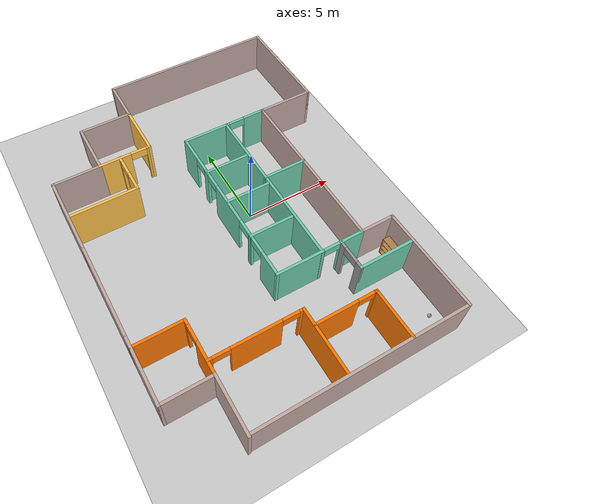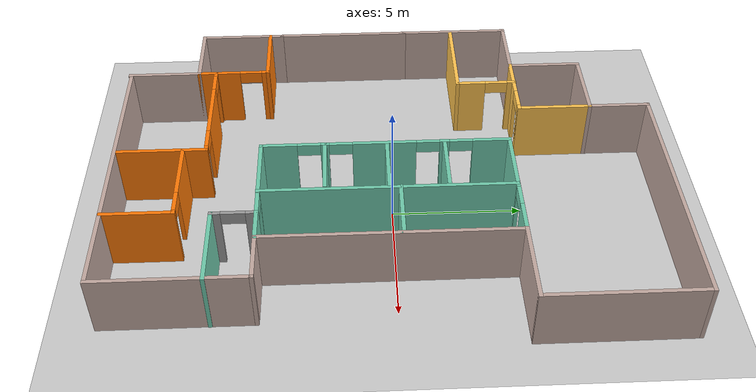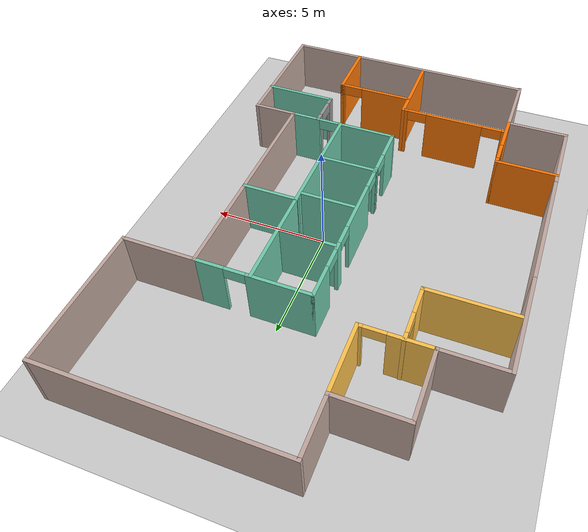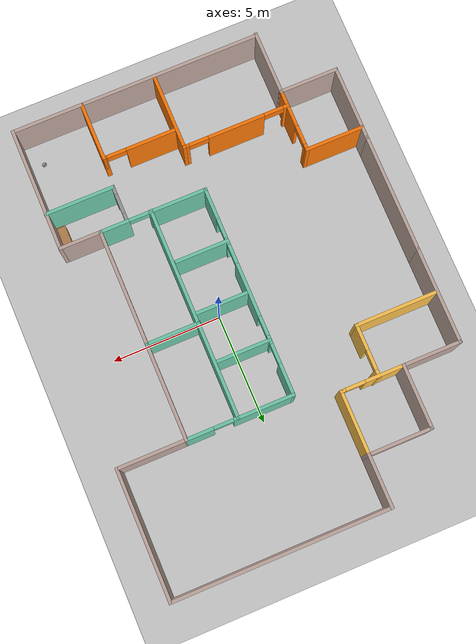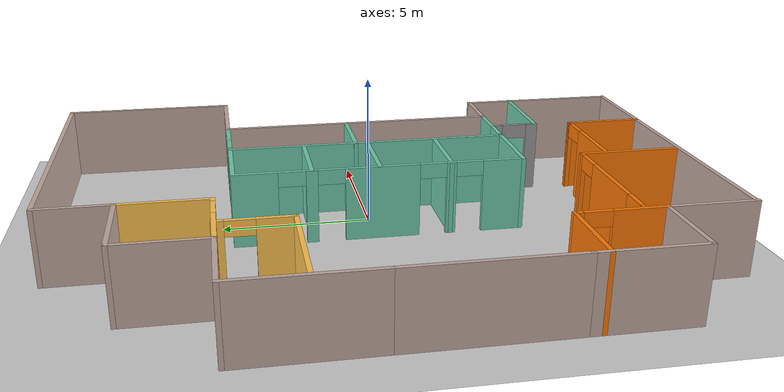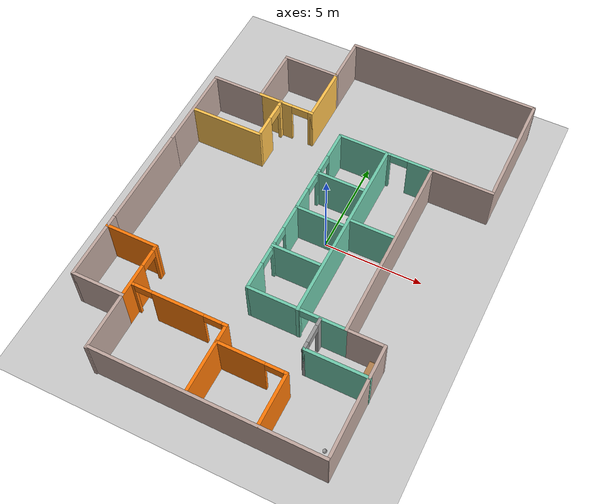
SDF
<sdf version="1.6">
 <world name="default">
  <model name="ground_plane">
   <static>1</static>
   <link name="link">
    <collision name="collision">
     <geometry><plane><normal>0 0 1</normal><size>100 100</size></plane></geometry>
     <surface>
      <contact><collide_bitmask>65535</collide_bitmask></contact>
      <friction><ode><mu>100</mu><mu2>50</mu2></ode></friction>
     </surface>
    </collision>
    <visual name="visual">
     <cast_shadows>0</cast_shadows>
     <geometry><plane><normal>0 0 1</normal><size>100 100</size></plane></geometry>
     <material>
      <script><uri>file://media/materials/scripts/gazebo.material</uri><name>Gazebo/Grey</name></script>
     </material>
    </visual>
   </link>
  </model>
  <model name="my_ball">
   <link name="link_0">
    <inertial>
     <mass>1</mass>
     <inertia><ixx>0.1</ixx><ixy>0</ixy><ixz>0</ixz><iyy>0.1</iyy><iyz>0</iyz><izz>0.1</izz></inertia>
    </inertial>
    <visual name="visual">
     <geometry><sphere><radius>0.1</radius></sphere></geometry>
     <material>
      <lighting>1</lighting>
      <script><uri>file://media/materials/scripts/gazebo.material</uri><name>Gazebo/Grey</name></script>
      <shader type="pixel"><normal_map>__default__</normal_map></shader>
      <ambient>1 1 1 1</ambient>
      <diffuse>1 1 1 1</diffuse>
      <specular>1 1 1 1</specular>
      <emissive>1 1 1 1</emissive>
     </material>
    </visual>
    <collision name="collision">
     <geometry><sphere><radius>0.1</radius></sphere></geometry>
     <surface>
      <friction>
       <ode><mu>1</mu><mu2>1</mu2><fdir1>0 0 0</fdir1><slip1>0</slip1><slip2>0</slip2></ode>
       <torsional>
        <coefficient>1</coefficient>
        <patch_radius>0</patch_radius>
        <surface_radius>0</surface_radius>
        <use_patch_radius>1</use_patch_radius>
        <ode><slip>0</slip></ode>
       </torsional>
      </friction>
      <bounce><restitution_coefficient>0</restitution_coefficient><threshold>1e+06</threshold></bounce>
      <contact>
       <collide_without_contact>0</collide_without_contact>
       <collide_without_contact_bitmask>1</collide_without_contact_bitmask>
       <collide_bitmask>1</collide_bitmask>
       <ode>
        <soft_cfm>0</soft_cfm>
        <soft_erp>0.2</soft_erp>
        <kp>1e+13</kp>
        <kd>1</kd>
        <max_vel>0.01</max_vel>
        <min_depth>0</min_depth>
       </ode>
       <bullet>
        <split_impulse>1</split_impulse>
        <split_impulse_penetration_threshold>-0.01</split_impulse_penetration_threshold>
        <soft_cfm>0</soft_cfm>
        <soft_erp>0.2</soft_erp>
        <kp>1e+13</kp>
        <kd>1</kd>
       </bullet>
      </contact>
     </surface>
    </collision>
   </link>
   <static>0</static>
   <pose>4.58031 -9.50418 0.1 0 -0 0</pose>
  </model>
  <model name="Udacity_L1">
   <pose>-1.15174 -0.093938 0 0 -0 0</pose>
   <link name="Wall_10">
    <collision name="Wall_10_Collision">
     <geometry><box><size>3 0.15 2.5</size></box></geometry>
     <pose>0 0 1.25 0 -0 0</pose>
    </collision>
    <visual name="Wall_10_Visual">
     <pose>0 0 1.25 0 -0 0</pose>
     <geometry><box><size>3 0.15 2.5</size></box></geometry>
     <material>
      <script><uri>file://media/materials/scripts/gazebo.material</uri><name>Gazebo/Grey</name></script>
      <ambient>0.760784 0.662745 0.627451 1</ambient>
     </material>
     <meta><layer>0</layer></meta>
    </visual>
    <pose>-3.625 8.2 0 0 -0 3.14159</pose>
   </link>
   <link name="Wall_11">
    <collision name="Wall_11_Collision">
     <geometry><box><size>3 0.15 2.5</size></box></geometry>
     <pose>0 0 1.25 0 -0 0</pose>
    </collision>
    <visual name="Wall_11_Visual">
     <pose>0 0 1.25 0 -0 0</pose>
     <geometry><box><size>3 0.15 2.5</size></box></geometry>
     <material>
      <script><uri>file://media/materials/scripts/gazebo.material</uri><name>Gazebo/Grey</name></script>
      <ambient>0.760784 0.662745 0.627451 1</ambient>
     </material>
     <meta><layer>0</layer></meta>
    </visual>
    <pose>-5.05 6.775 0 0 0 -1.5708</pose>
   </link>
   <link name="Wall_12">
    <collision name="Wall_12_Collision">
     <geometry><box><size>2.75 0.15 2.5</size></box></geometry>
     <pose>0 0 1.25 0 -0 0</pose>
    </collision>
    <visual name="Wall_12_Visual">
     <pose>0 0 1.25 0 -0 0</pose>
     <geometry><box><size>2.75 0.15 2.5</size></box></geometry>
     <material>
      <script><uri>file://media/materials/scripts/gazebo.material</uri><name>Gazebo/Grey</name></script>
      <ambient>0.760784 0.662745 0.627451 1</ambient>
     </material>
     <meta><layer>0</layer></meta>
    </visual>
    <pose>-6.35 5.35 0 0 -0 3.14159</pose>
   </link>
   <link name="Wall_13">
    <collision name="Wall_13_Collision">
     <geometry><box><size>4.5 0.15 2.5</size></box></geometry>
     <pose>0 0 1.25 0 -0 0</pose>
    </collision>
    <visual name="Wall_13_Visual">
     <pose>0 0 1.25 0 -0 0</pose>
     <geometry><box><size>4.5 0.15 2.5</size></box></geometry>
     <material>
      <script><uri>file://media/materials/scripts/gazebo.material</uri><name>Gazebo/Grey</name></script>
      <ambient>0.760784 0.662745 0.627451 1</ambient>
     </material>
     <meta><layer>0</layer></meta>
    </visual>
    <pose>-7.65 3.175 0 0 0 -1.5708</pose>
   </link>
   <link name="Wall_14">
    <collision name="Wall_14_Collision">
     <geometry><box><size>5.5 0.15 2.5</size></box></geometry>
     <pose>0 0 1.25 0 -0 0</pose>
    </collision>
    <visual name="Wall_14_Visual">
     <pose>0 0 1.25 0 -0 0</pose>
     <geometry><box><size>5.5 0.15 2.5</size></box></geometry>
     <material>
      <script><uri>file://media/materials/scripts/gazebo.material</uri><name>Gazebo/Grey</name></script>
      <ambient>0.760784 0.662745 0.627451 1</ambient>
     </material>
     <meta><layer>0</layer></meta>
    </visual>
    <pose>-7.65 -1.675 0 0 0 -1.5708</pose>
   </link>
   <link name="Wall_15">
    <collision name="Wall_15_Collision">
     <geometry><box><size>3.5 0.15 2.5</size></box></geometry>
     <pose>0 0 1.25 0 -0 0</pose>
    </collision>
    <visual name="Wall_15_Visual">
     <pose>0 0 1.25 0 -0 0</pose>
     <geometry><box><size>3.5 0.15 2.5</size></box></geometry>
     <material>
      <script><uri>file://media/materials/scripts/gazebo.material</uri><name>Gazebo/Grey</name></script>
      <ambient>0.760784 0.662745 0.627451 1</ambient>
     </material>
     <meta><layer>0</layer></meta>
    </visual>
    <pose>-7.65 -6.025 0 0 0 -1.5708</pose>
   </link>
   <link name="Wall_16">
    <collision name="Wall_16_Collision">
     <geometry><box><size>2.75 0.15 2.5</size></box></geometry>
     <pose>0 0 1.25 0 -0 0</pose>
    </collision>
    <visual name="Wall_16_Visual">
     <pose>0 0 1.25 0 -0 0</pose>
     <geometry><box><size>2.75 0.15 2.5</size></box></geometry>
     <material>
      <script><uri>file://media/materials/scripts/gazebo.material</uri><name>Gazebo/Grey</name></script>
      <ambient>0.760784 0.662745 0.627451 1</ambient>
     </material>
     <meta><layer>0</layer></meta>
    </visual>
    <pose>-6.35 -7.7 0 0 -0 0</pose>
   </link>
   <link name="Wall_23">
    <collision name="Wall_23_Collision">
     <geometry><box><size>11.5 0.15 2.5</size></box></geometry>
     <pose>0 0 1.25 0 -0 0</pose>
    </collision>
    <visual name="Wall_23_Visual">
     <pose>0 0 1.25 0 -0 0</pose>
     <geometry><box><size>11.5 0.15 2.5</size></box></geometry>
     <material>
      <script><uri>file://media/materials/scripts/gazebo.material</uri><name>Gazebo/Grey</name></script>
      <ambient>0.760784 0.662745 0.627451 1</ambient>
     </material>
     <meta><layer>0</layer></meta>
    </visual>
    <pose>0.6984 -10.5 0 0 -0 3.14159</pose>
   </link>
   <link name="Wall_25">
    <collision name="Wall_25_Collision">
     <geometry><box><size>3 0.15 2.5</size></box></geometry>
     <pose>0 0 1.25 0 -0 0</pose>
    </collision>
    <visual name="Wall_25_Visual">
     <pose>0 0 1.25 0 -0 0</pose>
     <geometry><box><size>3 0.15 2.5</size></box></geometry>
     <material>
      <script><uri>file://media/materials/scripts/gazebo.material</uri><name>Gazebo/Grey</name></script>
      <ambient>0.760784 0.662745 0.627451 1</ambient>
     </material>
     <meta><layer>0</layer></meta>
    </visual>
    <pose>-5.05 -9.125 0 0 0 -1.5708</pose>
   </link>
   <link name="Wall_27">
    <pose>-3.625 5.35 0 0 -0 0</pose>
    <visual name="Wall_27_Visual_0">
     <pose>-0.583933 0 1.25 0 -0 0</pose>
     <geometry><box><size>1.83213 0.15 2.5</size></box></geometry>
     <material>
      <script><uri>file://media/materials/scripts/gazebo.material</uri><name>Gazebo/Grey</name></script>
      <ambient>1 0.764706 0.305882 1</ambient>
     </material>
     <meta><layer>0</layer></meta>
    </visual>
    <collision name="Wall_27_Collision_0">
     <geometry><box><size>1.83213 0.15 2.5</size></box></geometry>
     <pose>-0.583933 0 1.25 0 -0 0</pose>
    </collision>
    <visual name="Wall_27_Visual_1">
     <pose>1.36607 0 1.25 0 -0 0</pose>
     <geometry><box><size>0.267866 0.15 2.5</size></box></geometry>
     <material>
      <script><uri>file://media/materials/scripts/gazebo.material</uri><name>Gazebo/Grey</name></script>
      <ambient>1 0.764706 0.305882 1</ambient>
     </material>
     <meta><layer>0</layer></meta>
    </visual>
    <collision name="Wall_27_Collision_1">
     <geometry><box><size>0.267866 0.15 2.5</size></box></geometry>
     <pose>1.36607 0 1.25 0 -0 0</pose>
    </collision>
    <visual name="Wall_27_Visual_2">
     <pose>0.782134 0 2.25 0 -0 0</pose>
     <geometry><box><size>0.9 0.15 0.5</size></box></geometry>
     <material>
      <script><uri>file://media/materials/scripts/gazebo.material</uri><name>Gazebo/Grey</name></script>
      <ambient>1 0.764706 0.305882 1</ambient>
     </material>
     <meta><layer>0</layer></meta>
    </visual>
    <collision name="Wall_27_Collision_2">
     <geometry><box><size>0.9 0.15 0.5</size></box></geometry>
     <pose>0.782134 0 2.25 0 -0 0</pose>
    </collision>
   </link>
   <link name="Wall_28">
    <collision name="Wall_28_Collision">
     <geometry><box><size>3 0.15 2.5</size></box></geometry>
     <pose>0 0 1.25 0 -0 0</pose>
    </collision>
    <visual name="Wall_28_Visual">
     <pose>0 0 1.25 0 -0 0</pose>
     <geometry><box><size>3 0.15 2.5</size></box></geometry>
     <material>
      <script><uri>file://media/materials/scripts/gazebo.material</uri><name>Gazebo/Grey</name></script>
      <ambient>1 0.764706 0.305882 1</ambient>
     </material>
     <meta><layer>0</layer></meta>
    </visual>
    <pose>-2.2 6.775 0 0 -0 1.5708</pose>
   </link>
   <link name="Wall_3">
    <collision name="Wall_3_Collision">
     <geometry><box><size>5.75 0.15 2.5</size></box></geometry>
     <pose>0 0 1.25 0 -0 0</pose>
    </collision>
    <visual name="Wall_3_Visual">
     <pose>0 0 1.25 0 -0 0</pose>
     <geometry><box><size>5.75 0.15 2.5</size></box></geometry>
     <material>
      <script><uri>file://media/materials/scripts/gazebo.material</uri><name>Gazebo/Grey</name></script>
      <ambient>0.760784 0.662745 0.627451 1</ambient>
     </material>
     <meta><layer>0</layer></meta>
    </visual>
    <pose>6.4 -7.7 0 0 -0 1.5708</pose>
   </link>
   <link name="Wall_33">
    <pose>-3.91607 4.20045 0 0 0 -1.5708</pose>
    <visual name="Wall_33_Visual_0">
     <pose>-1.05923 0 1.25 0 -0 0</pose>
     <geometry><box><size>0.381547 0.15 2.5</size></box></geometry>
     <material>
      <script><uri>file://media/materials/scripts/gazebo.material</uri><name>Gazebo/Grey</name></script>
      <ambient>1 0.764706 0.305882 1</ambient>
     </material>
     <meta><layer>0</layer></meta>
    </visual>
    <collision name="Wall_33_Collision_0">
     <geometry><box><size>0.381547 0.15 2.5</size></box></geometry>
     <pose>-1.05923 0 1.25 0 -0 0</pose>
    </collision>
    <visual name="Wall_33_Visual_1">
     <pose>0.640774 0 1.25 0 -0 0</pose>
     <geometry><box><size>1.21845 0.15 2.5</size></box></geometry>
     <material>
      <script><uri>file://media/materials/scripts/gazebo.material</uri><name>Gazebo/Grey</name></script>
      <ambient>1 0.764706 0.305882 1</ambient>
     </material>
     <meta><layer>0</layer></meta>
    </visual>
    <collision name="Wall_33_Collision_1">
     <geometry><box><size>1.21845 0.15 2.5</size></box></geometry>
     <pose>0.640774 0 1.25 0 -0 0</pose>
    </collision>
    <visual name="Wall_33_Visual_2">
     <pose>-0.418453 0 2.25 0 -0 0</pose>
     <geometry><box><size>0.9 0.15 0.5</size></box></geometry>
     <material>
      <script><uri>file://media/materials/scripts/gazebo.material</uri><name>Gazebo/Grey</name></script>
      <ambient>1 0.764706 0.305882 1</ambient>
     </material>
     <meta><layer>0</layer></meta>
    </visual>
    <collision name="Wall_33_Collision_2">
     <geometry><box><size>0.9 0.15 0.5</size></box></geometry>
     <pose>-0.418453 0 2.25 0 -0 0</pose>
    </collision>
   </link>
   <link name="Wall_34">
    <collision name="Wall_34_Collision">
     <geometry><box><size>3.75 0.15 2.5</size></box></geometry>
     <pose>0 0 1.25 0 -0 0</pose>
    </collision>
    <visual name="Wall_34_Visual">
     <pose>0 0 1.25 0 -0 0</pose>
     <geometry><box><size>3.75 0.15 2.5</size></box></geometry>
     <material>
      <script><uri>file://media/materials/scripts/gazebo.material</uri><name>Gazebo/Grey</name></script>
      <ambient>1 0.764706 0.305882 1</ambient>
     </material>
     <meta><layer>0</layer></meta>
    </visual>
    <pose>-5.71607 3.02545 0 0 -0 3.14159</pose>
   </link>
   <link name="Wall_36">
    <pose>-5.05 -6.275 0 0 -0 1.5708</pose>
    <visual name="Wall_36_Visual_0">
     <pose>-0.615418 0 1.25 0 -0 0</pose>
     <geometry><box><size>1.76916 0.15 2.5</size></box></geometry>
     <material>
      <script><uri>file://media/materials/scripts/gazebo.material</uri><name>Gazebo/Grey</name></script>
      <ambient>0.996078 0.47451 0.0196078 1</ambient>
     </material>
     <meta><layer>0</layer></meta>
    </visual>
    <collision name="Wall_36_Collision_0">
     <geometry><box><size>1.76916 0.15 2.5</size></box></geometry>
     <pose>-0.615418 0 1.25 0 -0 0</pose>
    </collision>
    <visual name="Wall_36_Visual_1">
     <pose>1.33458 0 1.25 0 -0 0</pose>
     <geometry><box><size>0.330836 0.15 2.5</size></box></geometry>
     <material>
      <script><uri>file://media/materials/scripts/gazebo.material</uri><name>Gazebo/Grey</name></script>
      <ambient>0.996078 0.47451 0.0196078 1</ambient>
     </material>
     <meta><layer>0</layer></meta>
    </visual>
    <collision name="Wall_36_Collision_1">
     <geometry><box><size>0.330836 0.15 2.5</size></box></geometry>
     <pose>1.33458 0 1.25 0 -0 0</pose>
    </collision>
    <visual name="Wall_36_Visual_2">
     <pose>0.719164 0 2.25 0 -0 0</pose>
     <geometry><box><size>0.9 0.15 0.5</size></box></geometry>
     <material>
      <script><uri>file://media/materials/scripts/gazebo.material</uri><name>Gazebo/Grey</name></script>
      <ambient>0.996078 0.47451 0.0196078 1</ambient>
     </material>
     <meta><layer>0</layer></meta>
    </visual>
    <collision name="Wall_36_Collision_2">
     <geometry><box><size>0.9 0.15 0.5</size></box></geometry>
     <pose>0.719164 0 2.25 0 -0 0</pose>
    </collision>
   </link>
   <link name="Wall_37">
    <collision name="Wall_37_Collision">
     <geometry><box><size>2.75 0.15 2.5</size></box></geometry>
     <pose>0 0 1.25 0 -0 0</pose>
    </collision>
    <visual name="Wall_37_Visual">
     <pose>0 0 1.25 0 -0 0</pose>
     <geometry><box><size>2.75 0.15 2.5</size></box></geometry>
     <material>
      <script><uri>file://media/materials/scripts/gazebo.material</uri><name>Gazebo/Grey</name></script>
      <ambient>0.996078 0.47451 0.0196078 1</ambient>
     </material>
     <meta><layer>0</layer></meta>
    </visual>
    <pose>-6.35 -4.85 0 0 -0 3.14159</pose>
   </link>
   <link name="Wall_39">
    <pose>-2.61929 -7.0035 0 0 -0 0</pose>
    <visual name="Wall_39_Visual_0">
     <pose>-2.36162 0 1.25 0 -0 0</pose>
     <geometry><box><size>0.27676 0.15 2.5</size></box></geometry>
     <material>
      <script><uri>file://media/materials/scripts/gazebo.material</uri><name>Gazebo/Grey</name></script>
      <ambient>0.996078 0.47451 0.0196078 1</ambient>
     </material>
     <meta><layer>0</layer></meta>
    </visual>
    <collision name="Wall_39_Collision_0">
     <geometry><box><size>0.27676 0.15 2.5</size></box></geometry>
     <pose>-2.36162 0 1.25 0 -0 0</pose>
    </collision>
    <visual name="Wall_39_Visual_1">
     <pose>-0.007702 0 1.25 0 -0 0</pose>
     <geometry><box><size>2.63108 0.15 2.5</size></box></geometry>
     <material>
      <script><uri>file://media/materials/scripts/gazebo.material</uri><name>Gazebo/Grey</name></script>
      <ambient>0.996078 0.47451 0.0196078 1</ambient>
     </material>
     <meta><layer>0</layer></meta>
    </visual>
    <collision name="Wall_39_Collision_1">
     <geometry><box><size>2.63108 0.15 2.5</size></box></geometry>
     <pose>-0.007702 0 1.25 0 -0 0</pose>
    </collision>
    <visual name="Wall_39_Visual_2">
     <pose>2.35392 0 1.25 0 -0 0</pose>
     <geometry><box><size>0.292165 0.15 2.5</size></box></geometry>
     <material>
      <script><uri>file://media/materials/scripts/gazebo.material</uri><name>Gazebo/Grey</name></script>
      <ambient>0.996078 0.47451 0.0196078 1</ambient>
     </material>
     <meta><layer>0</layer></meta>
    </visual>
    <collision name="Wall_39_Collision_2">
     <geometry><box><size>0.292165 0.15 2.5</size></box></geometry>
     <pose>2.35392 0 1.25 0 -0 0</pose>
    </collision>
    <visual name="Wall_39_Visual_3">
     <pose>-1.77324 0 2.25 0 -0 0</pose>
     <geometry><box><size>0.9 0.15 0.5</size></box></geometry>
     <material>
      <script><uri>file://media/materials/scripts/gazebo.material</uri><name>Gazebo/Grey</name></script>
      <ambient>0.996078 0.47451 0.0196078 1</ambient>
     </material>
     <meta><layer>0</layer></meta>
    </visual>
    <collision name="Wall_39_Collision_3">
     <geometry><box><size>0.9 0.15 0.5</size></box></geometry>
     <pose>-1.77324 0 2.25 0 -0 0</pose>
    </collision>
    <visual name="Wall_39_Visual_4">
     <pose>1.75784 0 2.25 0 -0 0</pose>
     <geometry><box><size>0.9 0.15 0.5</size></box></geometry>
     <material>
      <script><uri>file://media/materials/scripts/gazebo.material</uri><name>Gazebo/Grey</name></script>
      <ambient>0.996078 0.47451 0.0196078 1</ambient>
     </material>
     <meta><layer>0</layer></meta>
    </visual>
    <collision name="Wall_39_Collision_4">
     <geometry><box><size>0.9 0.15 0.5</size></box></geometry>
     <pose>1.75784 0 2.25 0 -0 0</pose>
    </collision>
   </link>
   <link name="Wall_4">
    <collision name="Wall_4_Collision">
     <geometry><box><size>2 0.15 2.5</size></box></geometry>
     <pose>0 0 1.25 0 -0 0</pose>
    </collision>
    <visual name="Wall_4_Visual">
     <pose>0 0 1.25 0 -0 0</pose>
     <geometry><box><size>2 0.15 2.5</size></box></geometry>
     <material>
      <script><uri>file://media/materials/scripts/gazebo.material</uri><name>Gazebo/Grey</name></script>
      <ambient>0.760784 0.662745 0.627451 1</ambient>
     </material>
     <meta><layer>0</layer></meta>
    </visual>
    <pose>5.475 -4.9 0 0 -0 3.14159</pose>
   </link>
   <link name="Wall_40">
    <collision name="Wall_40_Collision">
     <geometry><box><size>3.5 0.15 2.5</size></box></geometry>
     <pose>0 0 1.25 0 -0 0</pose>
    </collision>
    <visual name="Wall_40_Visual">
     <pose>0 0 1.25 0 -0 0</pose>
     <geometry><box><size>3.5 0.15 2.5</size></box></geometry>
     <material>
      <script><uri>file://media/materials/scripts/gazebo.material</uri><name>Gazebo/Grey</name></script>
      <ambient>0.996078 0.47451 0.0196078 1</ambient>
     </material>
     <meta><layer>0</layer></meta>
    </visual>
    <pose>-0.194292 -8.67849 0 0 0 -1.5708</pose>
   </link>
   <link name="Wall_42">
    <pose>1.52514 -7.8813 0 0 -0 0</pose>
    <visual name="Wall_42_Visual_0">
     <pose>-0.554213 0 1.25 0 -0 0</pose>
     <geometry><box><size>2.39157 0.15 2.5</size></box></geometry>
     <material>
      <script><uri>file://media/materials/scripts/gazebo.material</uri><name>Gazebo/Grey</name></script>
      <ambient>0.996078 0.47451 0.0196078 1</ambient>
     </material>
     <meta><layer>0</layer></meta>
    </visual>
    <collision name="Wall_42_Collision_0">
     <geometry><box><size>2.39157 0.15 2.5</size></box></geometry>
     <pose>-0.554213 0 1.25 0 -0 0</pose>
    </collision>
    <visual name="Wall_42_Visual_1">
     <pose>1.64579 0 1.25 0 -0 0</pose>
     <geometry><box><size>0.208426 0.15 2.5</size></box></geometry>
     <material>
      <script><uri>file://media/materials/scripts/gazebo.material</uri><name>Gazebo/Grey</name></script>
      <ambient>0.996078 0.47451 0.0196078 1</ambient>
     </material>
     <meta><layer>0</layer></meta>
    </visual>
    <collision name="Wall_42_Collision_1">
     <geometry><box><size>0.208426 0.15 2.5</size></box></geometry>
     <pose>1.64579 0 1.25 0 -0 0</pose>
    </collision>
    <visual name="Wall_42_Visual_2">
     <pose>1.09157 0 2.25 0 -0 0</pose>
     <geometry><box><size>0.9 0.15 0.5</size></box></geometry>
     <material>
      <script><uri>file://media/materials/scripts/gazebo.material</uri><name>Gazebo/Grey</name></script>
      <ambient>0.996078 0.47451 0.0196078 1</ambient>
     </material>
     <meta><layer>0</layer></meta>
    </visual>
    <collision name="Wall_42_Collision_2">
     <geometry><box><size>0.9 0.15 0.5</size></box></geometry>
     <pose>1.09157 0 2.25 0 -0 0</pose>
    </collision>
   </link>
   <link name="Wall_43">
    <collision name="Wall_43_Collision">
     <geometry><box><size>2.75 0.15 2.5</size></box></geometry>
     <pose>0 0 1.25 0 -0 0</pose>
    </collision>
    <visual name="Wall_43_Visual">
     <pose>0 0 1.25 0 -0 0</pose>
     <geometry><box><size>2.75 0.15 2.5</size></box></geometry>
     <material>
      <script><uri>file://media/materials/scripts/gazebo.material</uri><name>Gazebo/Grey</name></script>
      <ambient>0.996078 0.47451 0.0196078 1</ambient>
     </material>
     <meta><layer>0</layer></meta>
    </visual>
    <pose>3.20015 -9.1813 0 0 0 -1.5708</pose>
   </link>
   <link name="Wall_48">
    <pose>2.125 -4.9 0 0 -0 3.14159</pose>
    <visual name="Wall_48_Visual_0">
     <pose>-1.80048 0 1.25 0 -0 0</pose>
     <geometry><box><size>1.39905 0.15 2.5</size></box></geometry>
     <material>
      <script><uri>file://media/materials/scripts/gazebo.material</uri><name>Gazebo/Grey</name></script>
      <ambient>0.435294 0.796078 0.67451 1</ambient>
     </material>
     <meta><layer>0</layer></meta>
    </visual>
    <collision name="Wall_48_Collision_0">
     <geometry><box><size>1.39905 0.15 2.5</size></box></geometry>
     <pose>-1.80048 0 1.25 0 -0 0</pose>
    </collision>
    <visual name="Wall_48_Visual_1">
     <pose>1.14952 0 1.25 0 -0 0</pose>
     <geometry><box><size>2.70095 0.15 2.5</size></box></geometry>
     <material>
      <script><uri>file://media/materials/scripts/gazebo.material</uri><name>Gazebo/Grey</name></script>
      <ambient>0.435294 0.796078 0.67451 1</ambient>
     </material>
     <meta><layer>0</layer></meta>
    </visual>
    <collision name="Wall_48_Collision_1">
     <geometry><box><size>2.70095 0.15 2.5</size></box></geometry>
     <pose>1.14952 0 1.25 0 -0 0</pose>
    </collision>
    <visual name="Wall_48_Visual_2">
     <pose>-0.65095 0 2.25 0 -0 0</pose>
     <geometry><box><size>0.9 0.15 0.5</size></box></geometry>
     <material>
      <script><uri>file://media/materials/scripts/gazebo.material</uri><name>Gazebo/Grey</name></script>
      <ambient>0.435294 0.796078 0.67451 1</ambient>
     </material>
     <meta><layer>0</layer></meta>
    </visual>
    <collision name="Wall_48_Collision_2">
     <geometry><box><size>0.9 0.15 0.5</size></box></geometry>
     <pose>-0.65095 0 2.25 0 -0 0</pose>
    </collision>
   </link>
   <link name="Wall_49">
    <pose>-0.3 -0.1 0 0 -0 1.5708</pose>
    <visual name="Wall_49_Visual_0">
     <pose>-4.1449 0 1.25 0 -0 0</pose>
     <geometry><box><size>1.46019 0.15 2.5</size></box></geometry>
     <material>
      <script><uri>file://media/materials/scripts/gazebo.material</uri><name>Gazebo/Grey</name></script>
      <ambient>0.435294 0.796078 0.67451 1</ambient>
     </material>
     <meta><layer>0</layer></meta>
    </visual>
    <collision name="Wall_49_Collision_0">
     <geometry><box><size>1.46019 0.15 2.5</size></box></geometry>
     <pose>-4.1449 0 1.25 0 -0 0</pose>
    </collision>
    <visual name="Wall_49_Visual_1">
     <pose>-2.34984 0 1.25 0 -0 0</pose>
     <geometry><box><size>0.329925 0.15 2.5</size></box></geometry>
     <material>
      <script><uri>file://media/materials/scripts/gazebo.material</uri><name>Gazebo/Grey</name></script>
      <ambient>0.435294 0.796078 0.67451 1</ambient>
     </material>
     <meta><layer>0</layer></meta>
    </visual>
    <collision name="Wall_49_Collision_1">
     <geometry><box><size>0.329925 0.15 2.5</size></box></geometry>
     <pose>-2.34984 0 1.25 0 -0 0</pose>
    </collision>
    <visual name="Wall_49_Visual_2">
     <pose>-0.048692 0 1.25 0 -0 0</pose>
     <geometry><box><size>2.47237 0.15 2.5</size></box></geometry>
     <material>
      <script><uri>file://media/materials/scripts/gazebo.material</uri><name>Gazebo/Grey</name></script>
      <ambient>0.435294 0.796078 0.67451 1</ambient>
     </material>
     <meta><layer>0</layer></meta>
    </visual>
    <collision name="Wall_49_Collision_2">
     <geometry><box><size>2.47237 0.15 2.5</size></box></geometry>
     <pose>-0.048692 0 1.25 0 -0 0</pose>
    </collision>
    <visual name="Wall_49_Visual_3">
     <pose>2.27891 0 1.25 0 -0 0</pose>
     <geometry><box><size>0.382825 0.15 2.5</size></box></geometry>
     <material>
      <script><uri>file://media/materials/scripts/gazebo.material</uri><name>Gazebo/Grey</name></script>
      <ambient>0.435294 0.796078 0.67451 1</ambient>
     </material>
     <meta><layer>0</layer></meta>
    </visual>
    <collision name="Wall_49_Collision_3">
     <geometry><box><size>0.382825 0.15 2.5</size></box></geometry>
     <pose>2.27891 0 1.25 0 -0 0</pose>
    </collision>
    <visual name="Wall_49_Visual_4">
     <pose>4.12266 0 1.25 0 -0 0</pose>
     <geometry><box><size>1.50468 0.15 2.5</size></box></geometry>
     <material>
      <script><uri>file://media/materials/scripts/gazebo.material</uri><name>Gazebo/Grey</name></script>
      <ambient>0.435294 0.796078 0.67451 1</ambient>
     </material>
     <meta><layer>0</layer></meta>
    </visual>
    <collision name="Wall_49_Collision_4">
     <geometry><box><size>1.50468 0.15 2.5</size></box></geometry>
     <pose>4.12266 0 1.25 0 -0 0</pose>
    </collision>
    <visual name="Wall_49_Visual_5">
     <pose>-2.96481 0 2.25 0 -0 0</pose>
     <geometry><box><size>0.9 0.15 0.5</size></box></geometry>
     <material>
      <script><uri>file://media/materials/scripts/gazebo.material</uri><name>Gazebo/Grey</name></script>
      <ambient>0.435294 0.796078 0.67451 1</ambient>
     </material>
     <meta><layer>0</layer></meta>
    </visual>
    <collision name="Wall_49_Collision_5">
     <geometry><box><size>0.9 0.15 0.5</size></box></geometry>
     <pose>-2.96481 0 2.25 0 -0 0</pose>
    </collision>
    <visual name="Wall_49_Visual_6">
     <pose>-1.73488 0 2.25 0 -0 0</pose>
     <geometry><box><size>0.9 0.15 0.5</size></box></geometry>
     <material>
      <script><uri>file://media/materials/scripts/gazebo.material</uri><name>Gazebo/Grey</name></script>
      <ambient>0.435294 0.796078 0.67451 1</ambient>
     </material>
     <meta><layer>0</layer></meta>
    </visual>
    <collision name="Wall_49_Collision_6">
     <geometry><box><size>0.9 0.15 0.5</size></box></geometry>
     <pose>-1.73488 0 2.25 0 -0 0</pose>
    </collision>
    <visual name="Wall_49_Visual_7">
     <pose>1.63749 0 2.25 0 -0 0</pose>
     <geometry><box><size>0.9 0.15 0.5</size></box></geometry>
     <material>
      <script><uri>file://media/materials/scripts/gazebo.material</uri><name>Gazebo/Grey</name></script>
      <ambient>0.435294 0.796078 0.67451 1</ambient>
     </material>
     <meta><layer>0</layer></meta>
    </visual>
    <collision name="Wall_49_Collision_7">
     <geometry><box><size>0.9 0.15 0.5</size></box></geometry>
     <pose>1.63749 0 2.25 0 -0 0</pose>
    </collision>
    <visual name="Wall_49_Visual_8">
     <pose>2.92032 0 2.25 0 -0 0</pose>
     <geometry><box><size>0.9 0.15 0.5</size></box></geometry>
     <material>
      <script><uri>file://media/materials/scripts/gazebo.material</uri><name>Gazebo/Grey</name></script>
      <ambient>0.435294 0.796078 0.67451 1</ambient>
     </material>
     <meta><layer>0</layer></meta>
    </visual>
    <collision name="Wall_49_Collision_8">
     <geometry><box><size>0.9 0.15 0.5</size></box></geometry>
     <pose>2.92032 0 2.25 0 -0 0</pose>
    </collision>
   </link>
   <link name="Wall_5">
    <collision name="Wall_5_Collision">
     <geometry><box><size>9.75 0.15 2.5</size></box></geometry>
     <pose>0 0 1.25 0 -0 0</pose>
    </collision>
    <visual name="Wall_5_Visual">
     <pose>0 0 1.25 0 -0 0</pose>
     <geometry><box><size>9.75 0.15 2.5</size></box></geometry>
     <material>
      <script><uri>file://media/materials/scripts/gazebo.material</uri><name>Gazebo/Grey</name></script>
      <ambient>0.760784 0.662745 0.627451 1</ambient>
     </material>
     <meta><layer>0</layer></meta>
    </visual>
    <pose>4.55 -0.1 0 0 -0 1.5708</pose>
   </link>
   <link name="Wall_50">
    <pose>2.125 4.7 0 0 -0 0</pose>
    <visual name="Wall_50_Visual_0">
     <pose>-1.10811 0 1.25 0 -0 0</pose>
     <geometry><box><size>2.78378 0.15 2.5</size></box></geometry>
     <material>
      <script><uri>file://media/materials/scripts/gazebo.material</uri><name>Gazebo/Grey</name></script>
      <ambient>0.435294 0.796078 0.67451 1</ambient>
     </material>
     <meta><layer>0</layer></meta>
    </visual>
    <collision name="Wall_50_Collision_0">
     <geometry><box><size>2.78378 0.15 2.5</size></box></geometry>
     <pose>-1.10811 0 1.25 0 -0 0</pose>
    </collision>
    <visual name="Wall_50_Visual_1">
     <pose>1.84189 0 1.25 0 -0 0</pose>
     <geometry><box><size>1.31622 0.15 2.5</size></box></geometry>
     <material>
      <script><uri>file://media/materials/scripts/gazebo.material</uri><name>Gazebo/Grey</name></script>
      <ambient>0.435294 0.796078 0.67451 1</ambient>
     </material>
     <meta><layer>0</layer></meta>
    </visual>
    <collision name="Wall_50_Collision_1">
     <geometry><box><size>1.31622 0.15 2.5</size></box></geometry>
     <pose>1.84189 0 1.25 0 -0 0</pose>
    </collision>
    <visual name="Wall_50_Visual_2">
     <pose>0.733778 0 2.25 0 -0 0</pose>
     <geometry><box><size>0.9 0.15 0.5</size></box></geometry>
     <material>
      <script><uri>file://media/materials/scripts/gazebo.material</uri><name>Gazebo/Grey</name></script>
      <ambient>0.435294 0.796078 0.67451 1</ambient>
     </material>
     <meta><layer>0</layer></meta>
    </visual>
    <collision name="Wall_50_Collision_2">
     <geometry><box><size>0.9 0.15 0.5</size></box></geometry>
     <pose>0.733778 0 2.25 0 -0 0</pose>
    </collision>
   </link>
   <link name="Wall_55">
    <pose>3.31562 -5.73776 0 0 0 -1.5708</pose>
    <visual name="Wall_55_Visual_0">
     <pose>-0.662812 0 1.25 0 -0 0</pose>
     <geometry><box><size>0.424377 0.15 2.5</size></box></geometry>
     <material>
      <script><uri>file://media/materials/scripts/gazebo.material</uri><name>Gazebo/Grey</name></script>
      <ambient>1 1 1 1</ambient>
     </material>
     <meta><layer>0</layer></meta>
    </visual>
    <collision name="Wall_55_Collision_0">
     <geometry><box><size>0.424377 0.15 2.5</size></box></geometry>
     <pose>-0.662812 0 1.25 0 -0 0</pose>
    </collision>
    <visual name="Wall_55_Visual_1">
     <pose>0.662188 0 1.25 0 -0 0</pose>
     <geometry><box><size>0.425623 0.15 2.5</size></box></geometry>
     <material>
      <script><uri>file://media/materials/scripts/gazebo.material</uri><name>Gazebo/Grey</name></script>
      <ambient>1 1 1 1</ambient>
     </material>
     <meta><layer>0</layer></meta>
    </visual>
    <collision name="Wall_55_Collision_1">
     <geometry><box><size>0.425623 0.15 2.5</size></box></geometry>
     <pose>0.662188 0 1.25 0 -0 0</pose>
    </collision>
    <visual name="Wall_55_Visual_2">
     <pose>-0.000623 0 2.25 0 -0 0</pose>
     <geometry><box><size>0.9 0.15 0.5</size></box></geometry>
     <material>
      <script><uri>file://media/materials/scripts/gazebo.material</uri><name>Gazebo/Grey</name></script>
      <ambient>1 1 1 1</ambient>
     </material>
     <meta><layer>0</layer></meta>
    </visual>
    <collision name="Wall_55_Collision_2">
     <geometry><box><size>0.9 0.15 0.5</size></box></geometry>
     <pose>-0.000623 0 2.25 0 -0 0</pose>
    </collision>
   </link>
   <link name="Wall_56">
    <collision name="Wall_56_Collision">
     <geometry><box><size>3.25 0.15 2.5</size></box></geometry>
     <pose>0 0 1.25 0 -0 0</pose>
    </collision>
    <visual name="Wall_56_Visual">
     <pose>0 0 1.25 0 -0 0</pose>
     <geometry><box><size>3.25 0.15 2.5</size></box></geometry>
     <material>
      <script><uri>file://media/materials/scripts/gazebo.material</uri><name>Gazebo/Grey</name></script>
      <ambient>0.435294 0.796078 0.67451 1</ambient>
     </material>
     <meta><layer>0</layer></meta>
    </visual>
    <pose>4.86562 -6.53776 0 0 -0 0</pose>
   </link>
   <link name="Wall_58">
    <collision name="Wall_58_Collision">
     <geometry><box><size>9.75 0.15 2.5</size></box></geometry>
     <pose>0 0 1.25 0 -0 0</pose>
    </collision>
    <visual name="Wall_58_Visual">
     <pose>0 0 1.25 0 -0 0</pose>
     <geometry><box><size>9.75 0.15 2.5</size></box></geometry>
     <material>
      <script><uri>file://media/materials/scripts/gazebo.material</uri><name>Gazebo/Grey</name></script>
      <ambient>0.435294 0.796078 0.67451 1</ambient>
     </material>
     <meta><layer>0</layer></meta>
    </visual>
    <pose>2.20765 -0.117521 0 0 -0 1.5708</pose>
   </link>
   <link name="Wall_6">
    <collision name="Wall_6_Collision">
     <geometry><box><size>3.25 0.15 2.5</size></box></geometry>
     <pose>0 0 1.25 0 -0 0</pose>
    </collision>
    <visual name="Wall_6_Visual">
     <pose>0 0 1.25 0 -0 0</pose>
     <geometry><box><size>3.25 0.15 2.5</size></box></geometry>
     <material>
      <script><uri>file://media/materials/scripts/gazebo.material</uri><name>Gazebo/Grey</name></script>
      <ambient>0.760784 0.662745 0.627451 1</ambient>
     </material>
     <meta><layer>0</layer></meta>
    </visual>
    <pose>6.1 4.7 0 0 -0 0</pose>
   </link>
   <link name="Wall_60">
    <collision name="Wall_60_Collision">
     <geometry><box><size>2.5 0.15 2.5</size></box></geometry>
     <pose>0 0 1.25 0 -0 0</pose>
    </collision>
    <visual name="Wall_60_Visual">
     <pose>0 0 1.25 0 -0 0</pose>
     <geometry><box><size>2.5 0.15 2.5</size></box></geometry>
     <material>
      <script><uri>file://media/materials/scripts/gazebo.material</uri><name>Gazebo/Grey</name></script>
      <ambient>0.435294 0.796078 0.67451 1</ambient>
     </material>
     <meta><layer>0</layer></meta>
    </visual>
    <pose>3.35522 0.356501 0 0 -0 0</pose>
   </link>
   <link name="Wall_62">
    <collision name="Wall_62_Collision">
     <geometry><box><size>2.5 0.15 2.5</size></box></geometry>
     <pose>0 0 1.25 0 -0 0</pose>
    </collision>
    <visual name="Wall_62_Visual">
     <pose>0 0 1.25 0 -0 0</pose>
     <geometry><box><size>2.5 0.15 2.5</size></box></geometry>
     <material>
      <script><uri>file://media/materials/scripts/gazebo.material</uri><name>Gazebo/Grey</name></script>
      <ambient>0.435294 0.796078 0.67451 1</ambient>
     </material>
     <meta><layer>0</layer></meta>
    </visual>
    <pose>0.868807 -2.44775 0 0 -0 0</pose>
   </link>
   <link name="Wall_64">
    <collision name="Wall_64_Collision">
     <geometry><box><size>2.5 0.15 2.5</size></box></geometry>
     <pose>0 0 1.25 0 -0 0</pose>
    </collision>
    <visual name="Wall_64_Visual">
     <pose>0 0 1.25 0 -0 0</pose>
     <geometry><box><size>2.5 0.15 2.5</size></box></geometry>
     <material>
      <script><uri>file://media/materials/scripts/gazebo.material</uri><name>Gazebo/Grey</name></script>
      <ambient>0.435294 0.796078 0.67451 1</ambient>
     </material>
     <meta><layer>0</layer></meta>
    </visual>
    <pose>0.902752 -0.053917 0 0 -0 0</pose>
   </link>
   <link name="Wall_66">
    <collision name="Wall_66_Collision">
     <geometry><box><size>2.5 0.15 2.5</size></box></geometry>
     <pose>0 0 1.25 0 -0 0</pose>
    </collision>
    <visual name="Wall_66_Visual">
     <pose>0 0 1.25 0 -0 0</pose>
     <geometry><box><size>2.5 0.15 2.5</size></box></geometry>
     <material>
      <script><uri>file://media/materials/scripts/gazebo.material</uri><name>Gazebo/Grey</name></script>
      <ambient>0.435294 0.796078 0.67451 1</ambient>
     </material>
     <meta><layer>0</layer></meta>
    </visual>
    <pose>0.886218 2.17879 0 0 -0 0</pose>
   </link>
   <link name="Wall_7">
    <collision name="Wall_7_Collision">
     <geometry><box><size>6 0.15 2.5</size></box></geometry>
     <pose>0 0 1.25 0 -0 0</pose>
    </collision>
    <visual name="Wall_7_Visual">
     <pose>0 0 1.25 0 -0 0</pose>
     <geometry><box><size>6 0.15 2.5</size></box></geometry>
     <material>
      <script><uri>file://media/materials/scripts/gazebo.material</uri><name>Gazebo/Grey</name></script>
      <ambient>0.760784 0.662745 0.627451 1</ambient>
     </material>
     <meta><layer>0</layer></meta>
    </visual>
    <pose>7.65 7.625 0 0 -0 1.5708</pose>
   </link>
   <link name="Wall_8">
    <collision name="Wall_8_Collision">
     <geometry><box><size>10 0.15 2.5</size></box></geometry>
     <pose>0 0 1.25 0 -0 0</pose>
    </collision>
    <visual name="Wall_8_Visual">
     <pose>0 0 1.25 0 -0 0</pose>
     <geometry><box><size>10 0.15 2.5</size></box></geometry>
     <material>
      <script><uri>file://media/materials/scripts/gazebo.material</uri><name>Gazebo/Grey</name></script>
      <ambient>0.760784 0.662745 0.627451 1</ambient>
     </material>
     <meta><layer>0</layer></meta>
    </visual>
    <pose>2.725 10.55 0 0 -0 3.14159</pose>
   </link>
   <link name="Wall_9">
    <collision name="Wall_9_Collision">
     <geometry><box><size>2.5 0.15 2.5</size></box></geometry>
     <pose>0 0 1.25 0 -0 0</pose>
    </collision>
    <visual name="Wall_9_Visual">
     <pose>0 0 1.25 0 -0 0</pose>
     <geometry><box><size>2.5 0.15 2.5</size></box></geometry>
     <material>
      <script><uri>file://media/materials/scripts/gazebo.material</uri><name>Gazebo/Grey</name></script>
      <ambient>0.760784 0.662745 0.627451 1</ambient>
     </material>
     <meta><layer>0</layer></meta>
    </visual>
    <pose>-2.2 9.375 0 0 0 -1.5708</pose>
   </link>
   <static>1</static>
  </model>
  <model name="bookshelf">
   <static>1</static>
   <link name="link">
    <inertial><mass>1</mass></inertial>
    <collision name="back">
     <pose>0 0.005 0.6 0 -0 0</pose>
     <geometry><box><size>0.9 0.01 1.2</size></box></geometry>
    </collision>
    <visual name="visual1">
     <pose>0 0.005 0.6 0 -0 0</pose>
     <geometry><box><size>0.9 0.01 1.2</size></box></geometry>
     <material>
      <script><uri>file://media/materials/scripts/gazebo.material</uri><name>Gazebo/Wood</name></script>
     </material>
    </visual>
    <collision name="left_side">
     <pose>0.45 -0.195 0.6 0 -0 0</pose>
     <geometry><box><size>0.02 0.4 1.2</size></box></geometry>
    </collision>
    <visual name="visual2">
     <pose>0.45 -0.195 0.6 0 -0 0</pose>
     <geometry><box><size>0.02 0.4 1.2</size></box></geometry>
     <material>
      <script><uri>file://media/materials/scripts/gazebo.material</uri><name>Gazebo/Wood</name></script>
     </material>
    </visual>
    <collision name="right_side">
     <pose>-0.45 -0.195 0.6 0 -0 0</pose>
     <geometry><box><size>0.02 0.4 1.2</size></box></geometry>
    </collision>
    <visual name="visual3">
     <pose>-0.45 -0.195 0.6 0 -0 0</pose>
     <geometry><box><size>0.02 0.4 1.2</size></box></geometry>
     <material>
      <script><uri>file://media/materials/scripts/gazebo.material</uri><name>Gazebo/Wood</name></script>
     </material>
    </visual>
    <collision name="bottom">
     <pose>0 -0.195 0.03 0 -0 0</pose>
     <geometry><box><size>0.88 0.4 0.06</size></box></geometry>
    </collision>
    <visual name="visual4">
     <pose>0 -0.195 0.03 0 -0 0</pose>
     <geometry><box><size>0.88 0.4 0.06</size></box></geometry>
     <material>
      <script><uri>file://media/materials/scripts/gazebo.material</uri><name>Gazebo/Wood</name></script>
     </material>
    </visual>
    <collision name="top">
     <pose>0 -0.195 1.19 0 -0 0</pose>
     <geometry><box><size>0.88 0.4 0.02</size></box></geometry>
    </collision>
    <visual name="visual5">
     <pose>0 -0.195 1.19 0 -0 0</pose>
     <geometry><box><size>0.88 0.4 0.02</size></box></geometry>
     <material>
      <script><uri>file://media/materials/scripts/gazebo.material</uri><name>Gazebo/Wood</name></script>
     </material>
    </visual>
    <collision name="low_shelf">
     <pose>0 -0.195 0.43 0 -0 0</pose>
     <geometry><box><size>0.88 0.4 0.02</size></box></geometry>
    </collision>
    <visual name="visual6">
     <pose>0 -0.195 0.43 0 -0 0</pose>
     <geometry><box><size>0.88 0.4 0.02</size></box></geometry>
     <material>
      <script><uri>file://media/materials/scripts/gazebo.material</uri><name>Gazebo/Wood</name></script>
     </material>
    </visual>
    <collision name="high_shelf">
     <pose>0 -0.195 0.8 0 -0 0</pose>
     <geometry><box><size>0.88 0.4 0.02</size></box></geometry>
    </collision>
    <visual name="visual7">
     <pose>0 -0.195 0.8 0 -0 0</pose>
     <geometry><box><size>0.88 0.4 0.02</size></box></geometry>
     <material>
      <script><uri>file://media/materials/scripts/gazebo.material</uri><name>Gazebo/Wood</name></script>
     </material>
    </visual>
   </link>
   <pose>5.11643 -5.76625 0 0 0 -1.57</pose>
  </model>
 </world>
</sdf>
